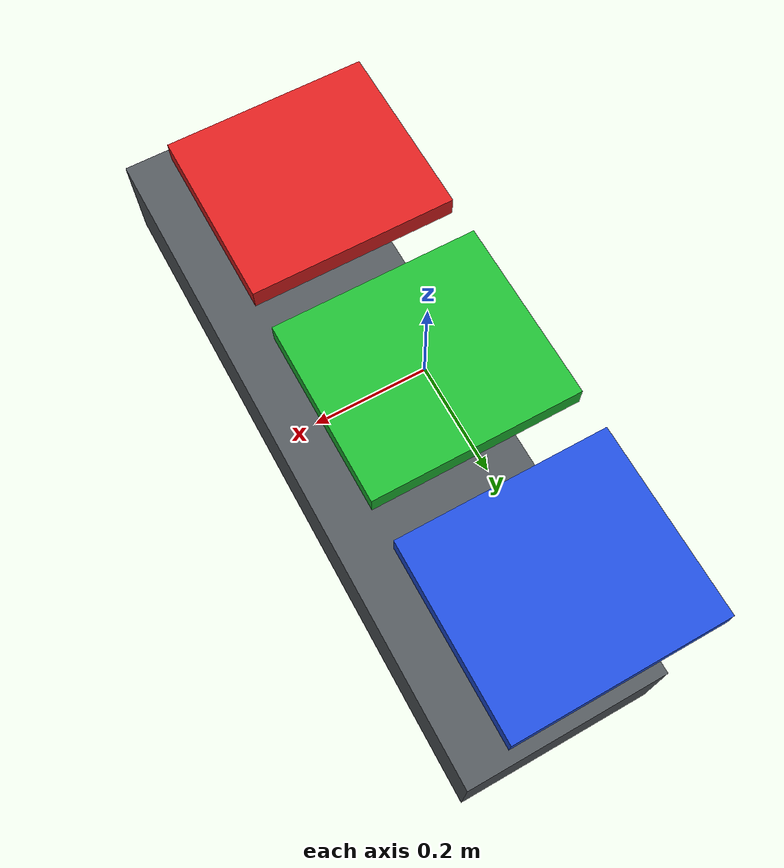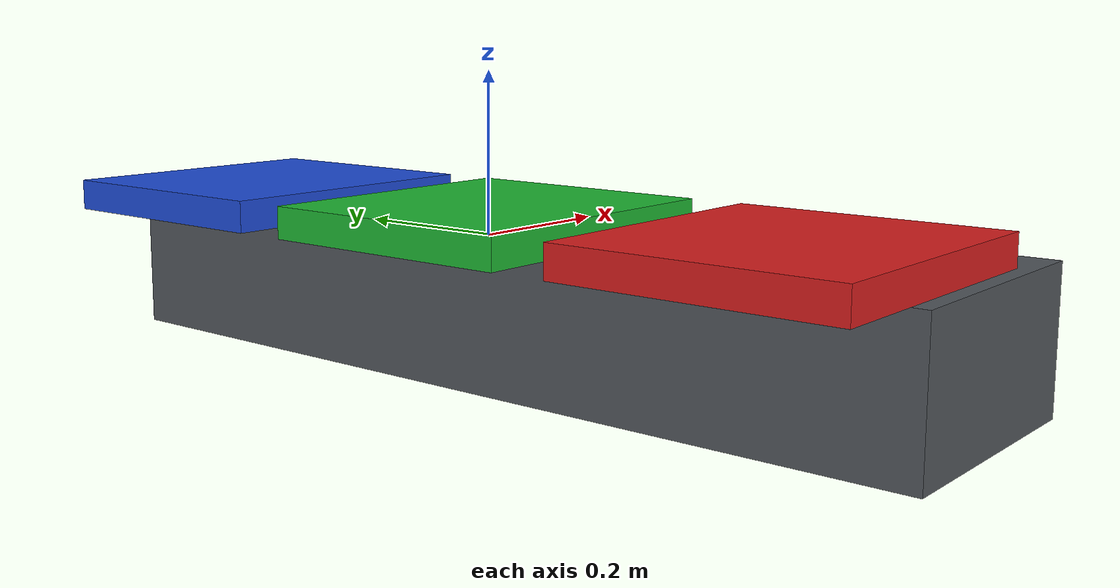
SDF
<?xml version='1.0' encoding='utf-8'?>
<sdf version="1.10">
  <model name="sorting_bins">
    <static>true</static>
    <link name="red_bin_link">
      <collision name="red_bottom_collision">
        <pose>0 -0.41 0.02 0 0 0</pose>
        <geometry>
          <box>
            <size>0.38 0.34 0.04</size>
          </box>
        </geometry>
      </collision>
      <visual name="red_bottom_visual">
        <pose>0 -0.41 0.02 0 0 0</pose>
        <geometry>
          <box>
            <size>0.38 0.34 0.04</size>
          </box>
        </geometry>
        <material>
          <ambient>0.70 0.06 0.06 1</ambient>
          <diffuse>0.85 0.12 0.12 1</diffuse>
        </material>
      </visual>
    </link>
    <link name="green_bin_link">
      <collision name="green_bottom_collision">
        <pose>0 0 0.02 0 0 0</pose>
        <geometry>
          <box>
            <size>0.38 0.34 0.04</size>
          </box>
        </geometry>
      </collision>
      <visual name="green_bottom_visual">
        <pose>0 0 0.02 0 0 0</pose>
        <geometry>
          <box>
            <size>0.38 0.34 0.04</size>
          </box>
        </geometry>
        <material>
          <ambient>0.06 0.55 0.12 1</ambient>
          <diffuse>0.12 0.72 0.20 1</diffuse>
        </material>
      </visual>
    </link>
    <link name="blue_bin_link">
      <collision name="blue_bottom_collision">
        <pose>0 0.41 0.02 0 0 0</pose>
        <geometry>
          <box>
            <size>0.38 0.34 0.04</size>
          </box>
        </geometry>
      </collision>
      <visual name="blue_bottom_visual">
        <pose>0 0.41 0.02 0 0 0</pose>
        <geometry>
          <box>
            <size>0.38 0.34 0.04</size>
          </box>
        </geometry>
        <material>
          <ambient>0.06 0.18 0.70 1</ambient>
          <diffuse>0.12 0.30 0.85 1</diffuse>
        </material>
      </visual>
    </link>
    <link name="sorting_bins_support">
      <pose>0.10 0 -0.09 0 0 0</pose>
      <visual name="support_visual">
        <geometry>
          <box>
            <size>0.34 1.20 0.18</size>
          </box>
        </geometry>
        <material>
          <ambient>0.28 0.30 0.32 1</ambient>
          <diffuse>0.32 0.34 0.36 1</diffuse>
        </material>
      </visual>
    </link>
  </model>
</sdf>
